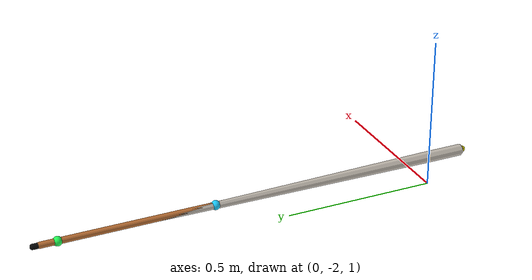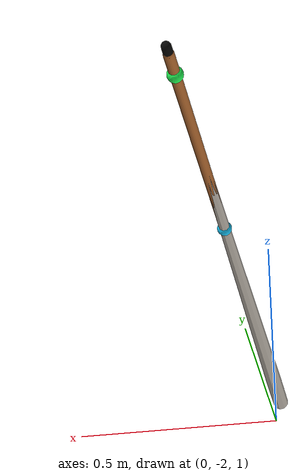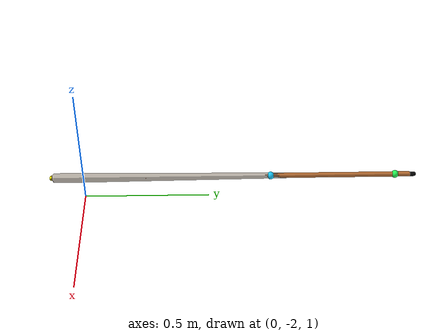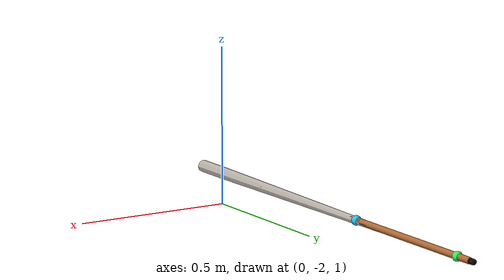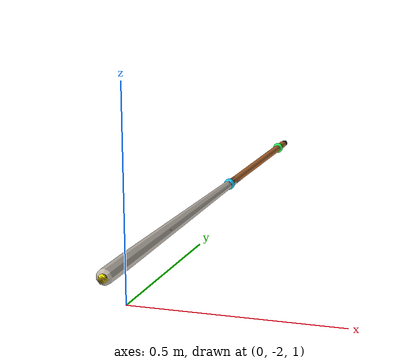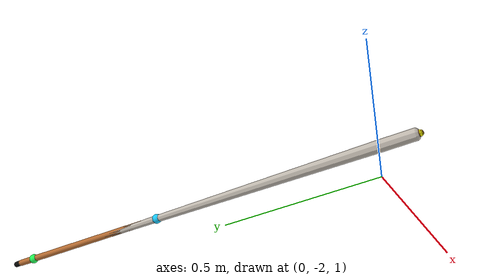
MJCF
<mujoco>
  <asset>
    <material name="gento_cue_wood_mat" rgba="0.72 0.43 0.20 1"/>
    <material name="gento_cue_tip_mat" rgba="0.03 0.03 0.028 1"/>
    <texture name="gento_cue_texture" type="2d"
             file="../assets/cue/sketchfab_pool_table_traditional/cue_mat_baseColor.png"/>
    <material name="gento_cue_visual_mat" texture="gento_cue_texture"
              rgba="1 1 1 1" reflectance="0.08"/>
    <mesh name="gento_cue_visual"
          file="../assets/cue/sketchfab_pool_table_traditional/pool_cue_visual_local.obj"/>
  </asset>

  <worldbody>
    <!-- The shaft center is 11 mm above the 1.090 m rail top. Its 10 mm
         radius therefore leaves a real 1 mm clearance over the cushion. -->
    <body name="cue_body" pos="0 -1.3996 1.101"
          quat="0.7071067812 0 0 0.7071067812">
      <freejoint name="cue_free"/>
      <geom name="cue_visual_mesh" type="mesh" mesh="gento_cue_visual"
            material="gento_cue_visual_mat" contype="0" conaffinity="0"
            density="0"/>
      <!-- Bit 32 contacts the finger pads (bit 64); affinity bit 1 also makes
           the shaft collide with the source table's real SDF/wood geoms. -->
      <geom name="cue_shaft" type="capsule" fromto="-0.725 0 0 0.705 0 0"
            size="0.010" mass="0.50" material="gento_cue_wood_mat"
            contype="32" conaffinity="65" condim="4" priority="3"
            friction="0.12 0.002 0.0002" solref="0.003 1"
            solimp="0.92 0.99 0.001"/>
      <geom name="cue_tip" type="capsule" fromto="0.705 0 0 0.725 0 0"
            size="0.009" mass="0.03" material="gento_cue_tip_mat"
            contype="4" conaffinity="3" condim="6" priority="4"
            friction="0.35 0.008 0.0001" solref="-5e6 -300"
            solimp="0.95 0.99 0.001"/>
      <site name="cue_tip_site" pos="0.725 0 0" size="0.006" rgba="0 1 0 1"/>
      <site name="cue_axis_site" pos="0 0 0" size="0.004" rgba="0 0.4 1 1"/>
      <site name="cue_bridge_site" pos="0.650 0 0" size="0.015"
            rgba="0.15 1 0.35 1"/>
      <site name="cue_left_grip_site" pos="0.150333 0 0" size="0.015"
            rgba="0.1 0.8 1 1"/>
      <site name="cue_right_grip_site" pos="-0.349667 0 0" size="0.015"
            rgba="1 0.35 0.1 1"/>
      <site name="cue_back_site" pos="-0.725 0 0" size="0.010"
            rgba="1 1 0 1"/>
    </body>
  </worldbody>
</mujoco>
